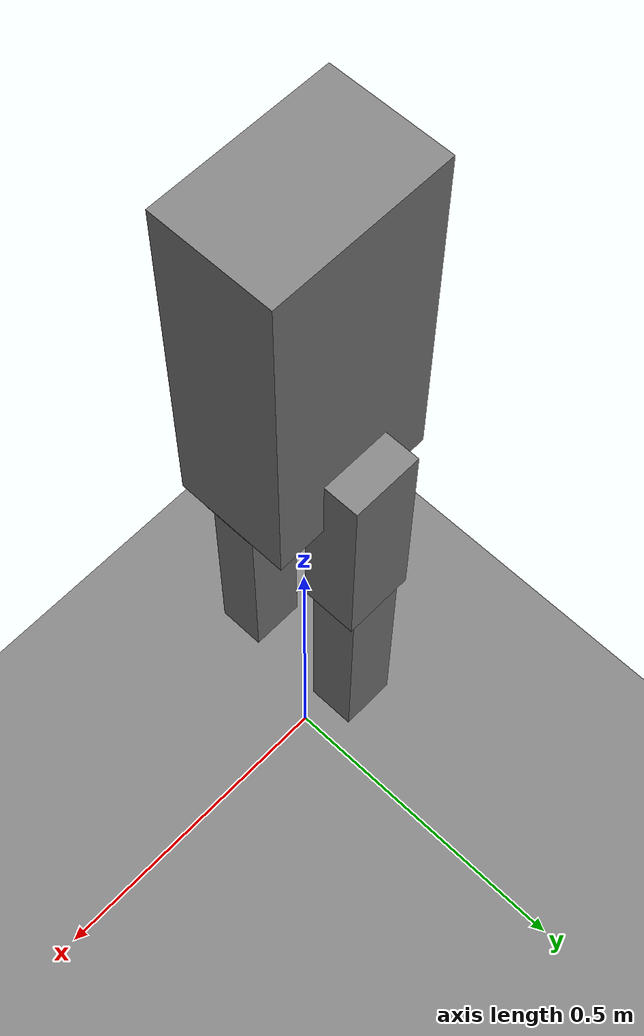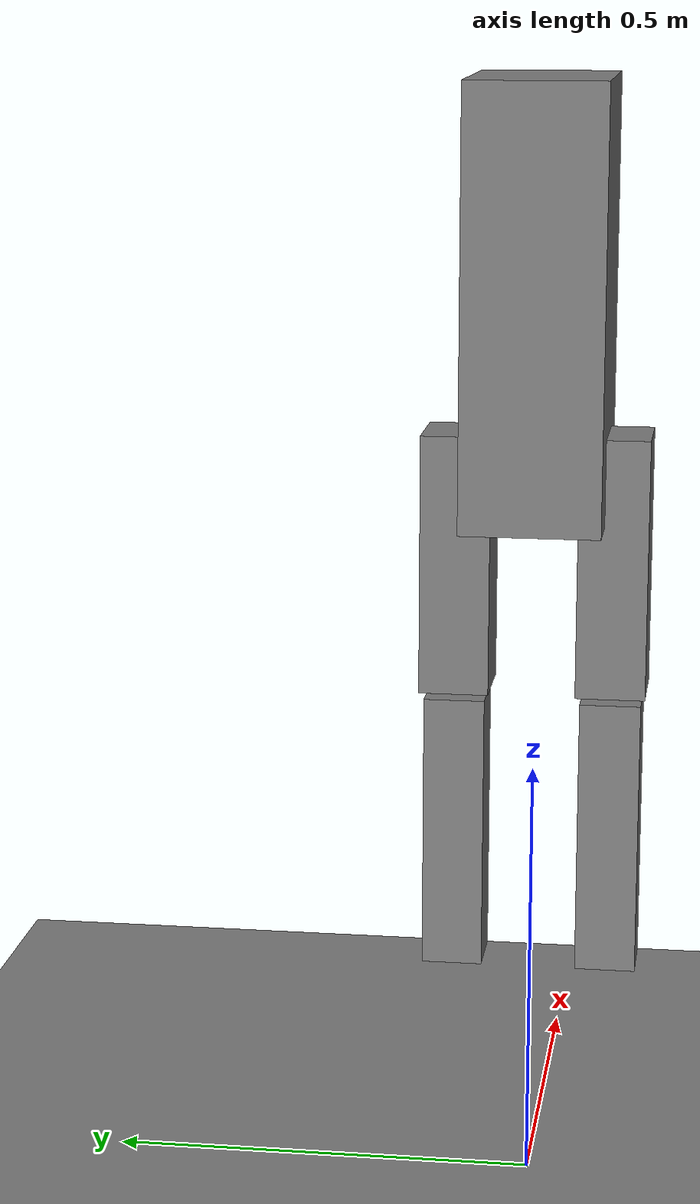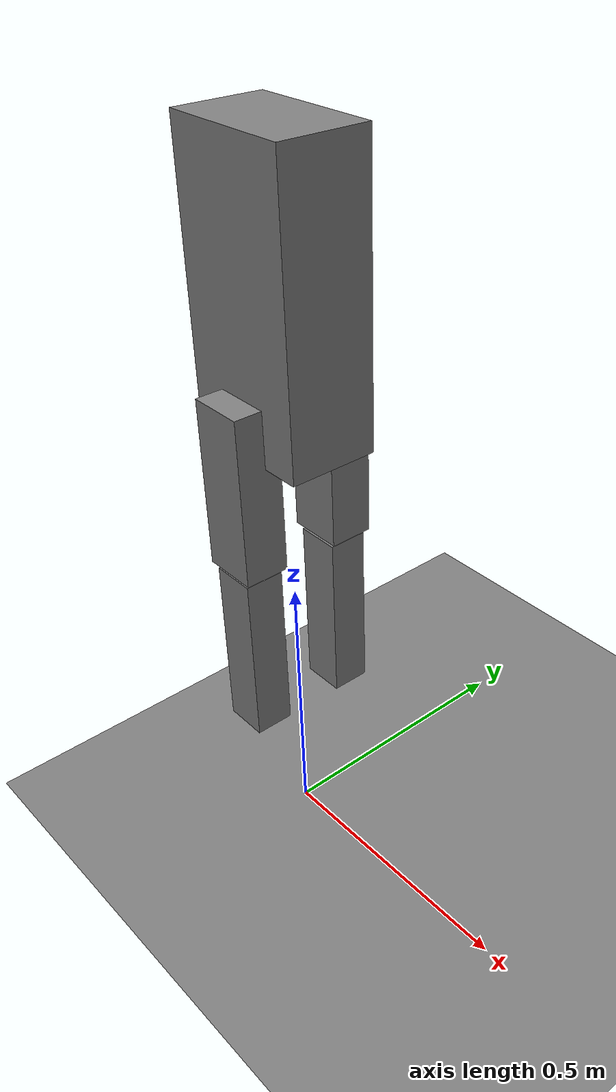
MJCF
<mujoco model="planar walker">
  <option timestep="0.005"/>
  <worldbody>
    <geom type="plane" size="20 20 1"/>
    <body name="torso" pos="0 0 1.05">
      <freejoint/>
      <geom type="box" size="0.12 0.08 0.25" density="800"/>
      <body name="left_thigh" pos="0 0.09 -0.3">
        <joint name="left_hip" type="hinge" pos="0 0 0.15" axis="0 1 0"/>
        <geom type="box" size="0.05 0.04 0.15" density="900"/>
        <body name="left_shin" pos="0 0 -0.32">
          <joint name="left_knee" type="hinge" pos="0 0 0.16" axis="0 1 0"/>
          <geom type="box" size="0.04 0.035 0.16" density="900"/>
        </body>
      </body>
      <body name="right_thigh" pos="0 -0.09 -0.3">
        <joint name="right_hip" type="hinge" pos="0 0 0.15" axis="0 1 0"/>
        <geom type="box" size="0.05 0.04 0.15" density="900"/>
        <body name="right_shin" pos="0 0 -0.32">
          <joint name="right_knee" type="hinge" pos="0 0 0.16" axis="0 1 0"/>
          <geom type="box" size="0.04 0.035 0.16" density="900"/>
        </body>
      </body>
    </body>
  </worldbody>
  <actuator>
    <motor name="left_hip" joint="left_hip" gear="40" ctrlrange="-1 1"/>
    <motor name="left_knee" joint="left_knee" gear="30" ctrlrange="-1 1"/>
    <motor name="right_hip" joint="right_hip" gear="40" ctrlrange="-1 1"/>
    <motor name="right_knee" joint="right_knee" gear="30" ctrlrange="-1 1"/>
  </actuator>
</mujoco>
